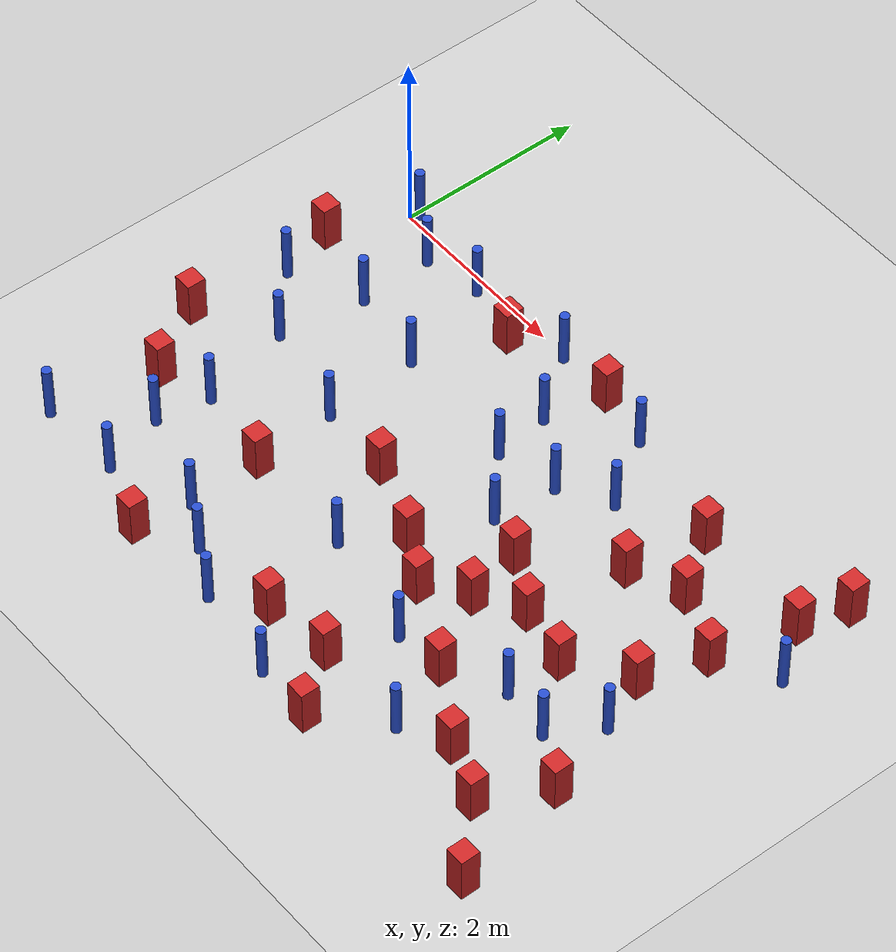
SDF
<sdf version="1.6">
 <world name="default">
  <model name="ground_plane">
   <static>1</static>
   <link name="link">
    <collision name="collision">
     <geometry><plane><normal>0 0 1</normal><size>100 100</size></plane></geometry>
     <surface><friction><ode><mu>100</mu><mu2>50</mu2></ode></friction></surface>
    </collision>
    <visual name="visual">
     <cast_shadows>0</cast_shadows>
     <geometry><plane><normal>0 0 1</normal><size>100 100</size></plane></geometry>
     <material>
      <ambient>1.0 1.0 1.0 1.0</ambient>
      <diffuse>0.8 0.8 0.8 1.0</diffuse>
      <specular>0.01 0.01 0.01 1.000000</specular>
     </material>
    </visual>
   </link>
  </model>
  <model name="NamedLocations">
   <static>true</static>
   <link name="DefaultStart"><pose>8.5 0 0 0 0 3.14</pose></link>
  </model>
  <model name="square_post_obstacle0">
   <static>true</static>
   <pose>3.18175804663 -2.55191059058 1.91545236811e-07 -7.35059704564e-06 1.12565212e-07 2.39332434364e-05</pose>
   <link name="link">
    <pose>0 0 0.25 0 -0 0</pose>
    <inertial>
     <mass>100</mass>
     <inertia>
      <ixx>0.166667</ixx>
      <ixy>0</ixy>
      <ixz>0</ixz>
      <iyy>0.166667</iyy>
      <iyz>0</iyz>
      <izz>0.166667</izz>
     </inertia>
    </inertial>
    <collision name="collision"><geometry><box><size>.2 .2 .5</size></box></geometry></collision>
    <visual name="visual">
     <geometry><box><size>.2 .2 .5</size></box></geometry>
     <material>
      <script><name>Gazebo/Red</name><uri>file://media/materials/scripts/gazebo.material</uri></script>
     </material>
    </visual>
   </link>
  </model>
  <model name="square_post_obstacle4">
   <static>true</static>
   <pose>3.96495598854 -1.96307099355 1.91545236811e-07 -7.35059704564e-06 1.12565212e-07 2.39332434364e-05</pose>
   <link name="link">
    <pose>0 0 0.25 0 -0 0</pose>
    <inertial>
     <mass>100</mass>
     <inertia>
      <ixx>0.166667</ixx>
      <ixy>0</ixy>
      <ixz>0</ixz>
      <iyy>0.166667</iyy>
      <iyz>0</iyz>
      <izz>0.166667</izz>
     </inertia>
    </inertial>
    <collision name="collision"><geometry><box><size>.2 .2 .5</size></box></geometry></collision>
    <visual name="visual">
     <geometry><box><size>.2 .2 .5</size></box></geometry>
     <material>
      <script><name>Gazebo/Red</name><uri>file://media/materials/scripts/gazebo.material</uri></script>
     </material>
    </visual>
   </link>
  </model>
  <model name="square_post_obstacle6">
   <static>true</static>
   <pose>5.1393558744 -2.42444670013 1.91545236811e-07 -7.35059704564e-06 1.12565212e-07 2.39332434364e-05</pose>
   <link name="link">
    <pose>0 0 0.25 0 -0 0</pose>
    <inertial>
     <mass>100</mass>
     <inertia>
      <ixx>0.166667</ixx>
      <ixy>0</ixy>
      <ixz>0</ixz>
      <iyy>0.166667</iyy>
      <iyz>0</iyz>
      <izz>0.166667</izz>
     </inertia>
    </inertial>
    <collision name="collision"><geometry><box><size>.2 .2 .5</size></box></geometry></collision>
    <visual name="visual">
     <geometry><box><size>.2 .2 .5</size></box></geometry>
     <material>
      <script><name>Gazebo/Red</name><uri>file://media/materials/scripts/gazebo.material</uri></script>
     </material>
    </visual>
   </link>
  </model>
  <model name="pole_obstacle7">
   <static>true</static>
   <pose>1.61050316062 -3.80442703881 7.38925637345e-09 -8.47170692799e-08 1.24976765053e-08 -1.74513093017e-07</pose>
   <link name="link">
    <pose>0 0 0.3 0 -0 0</pose>
    <inertial>
     <mass>1</mass>
     <inertia><ixx>0.145833</ixx><ixy>0</ixy><ixz>0</ixz><iyy>0.145833</iyy><iyz>0</iyz><izz>0.125</izz></inertia>
    </inertial>
    <collision name="collision">
     <geometry><cylinder><radius>0.05</radius><length>.6</length></cylinder></geometry>
    </collision>
    <visual name="visual">
     <geometry><cylinder><radius>0.05</radius><length>.6</length></cylinder></geometry>
     <material>
      <script><name>Gazebo/Blue</name><uri>file://media/materials/scripts/gazebo.material</uri></script>
     </material>
    </visual>
   </link>
  </model>
  <model name="square_post_obstacle9">
   <static>true</static>
   <pose>5.92759945526 -1.3757462042 1.91545236811e-07 -7.35059704564e-06 1.12565212e-07 2.39332434364e-05</pose>
   <link name="link">
    <pose>0 0 0.25 0 -0 0</pose>
    <inertial>
     <mass>100</mass>
     <inertia>
      <ixx>0.166667</ixx>
      <ixy>0</ixy>
      <ixz>0</ixz>
      <iyy>0.166667</iyy>
      <iyz>0</iyz>
      <izz>0.166667</izz>
     </inertia>
    </inertial>
    <collision name="collision"><geometry><box><size>.2 .2 .5</size></box></geometry></collision>
    <visual name="visual">
     <geometry><box><size>.2 .2 .5</size></box></geometry>
     <material>
      <script><name>Gazebo/Red</name><uri>file://media/materials/scripts/gazebo.material</uri></script>
     </material>
    </visual>
   </link>
  </model>
  <model name="square_post_obstacle16">
   <static>true</static>
   <pose>4.19334653572 -4.50781424525 1.91545236811e-07 -7.35059704564e-06 1.12565212e-07 2.39332434364e-05</pose>
   <link name="link">
    <pose>0 0 0.25 0 -0 0</pose>
    <inertial>
     <mass>100</mass>
     <inertia>
      <ixx>0.166667</ixx>
      <ixy>0</ixy>
      <ixz>0</ixz>
      <iyy>0.166667</iyy>
      <iyz>0</iyz>
      <izz>0.166667</izz>
     </inertia>
    </inertial>
    <collision name="collision"><geometry><box><size>.2 .2 .5</size></box></geometry></collision>
    <visual name="visual">
     <geometry><box><size>.2 .2 .5</size></box></geometry>
     <material>
      <script><name>Gazebo/Red</name><uri>file://media/materials/scripts/gazebo.material</uri></script>
     </material>
    </visual>
   </link>
  </model>
  <model name="pole_obstacle14">
   <static>true</static>
   <pose>4.01800889094 -0.832098684492 7.38925637345e-09 -8.471706928e-08 1.24976765147e-08 -1.74513093015e-07</pose>
   <link name="link">
    <pose>0 0 0.3 0 -0 0</pose>
    <inertial>
     <mass>1</mass>
     <inertia><ixx>0.145833</ixx><ixy>0</ixy><ixz>0</ixz><iyy>0.145833</iyy><iyz>0</iyz><izz>0.125</izz></inertia>
    </inertial>
    <collision name="collision">
     <geometry><cylinder><radius>0.05</radius><length>.6</length></cylinder></geometry>
    </collision>
    <visual name="visual">
     <geometry><cylinder><radius>0.05</radius><length>.6</length></cylinder></geometry>
     <material>
      <script><name>Gazebo/Blue</name><uri>file://media/materials/scripts/gazebo.material</uri></script>
     </material>
    </visual>
   </link>
  </model>
  <model name="square_post_obstacle24">
   <static>true</static>
   <pose>1.85379968884 -0.30714154001 1.91545236811e-07 -7.35059704564e-06 1.12565212e-07 2.39332434364e-05</pose>
   <link name="link">
    <pose>0 0 0.25 0 -0 0</pose>
    <inertial>
     <mass>100</mass>
     <inertia>
      <ixx>0.166667</ixx>
      <ixy>0</ixy>
      <ixz>0</ixz>
      <iyy>0.166667</iyy>
      <iyz>0</iyz>
      <izz>0.166667</izz>
     </inertia>
    </inertial>
    <collision name="collision"><geometry><box><size>.2 .2 .5</size></box></geometry></collision>
    <visual name="visual">
     <geometry><box><size>.2 .2 .5</size></box></geometry>
     <material>
      <script><name>Gazebo/Red</name><uri>file://media/materials/scripts/gazebo.material</uri></script>
     </material>
    </visual>
   </link>
  </model>
  <model name="pole_obstacle24">
   <static>true</static>
   <pose>0.455199240509 -1.91940216513 7.38925637345e-09 -8.47170692798e-08 1.24976765018e-08 -1.7451309302e-07</pose>
   <link name="link">
    <pose>0 0 0.3 0 -0 0</pose>
    <inertial>
     <mass>1</mass>
     <inertia><ixx>0.145833</ixx><ixy>0</ixy><ixz>0</ixz><iyy>0.145833</iyy><iyz>0</iyz><izz>0.125</izz></inertia>
    </inertial>
    <collision name="collision">
     <geometry><cylinder><radius>0.05</radius><length>.6</length></cylinder></geometry>
    </collision>
    <visual name="visual">
     <geometry><cylinder><radius>0.05</radius><length>.6</length></cylinder></geometry>
     <material>
      <script><name>Gazebo/Blue</name><uri>file://media/materials/scripts/gazebo.material</uri></script>
     </material>
    </visual>
   </link>
  </model>
  <model name="square_post_obstacle35">
   <static>true</static>
   <pose>-0.278103580083 -0.794941268956 1.91545236811e-07 -7.35059704564e-06 1.12565212e-07 2.39332434364e-05</pose>
   <link name="link">
    <pose>0 0 0.25 0 -0 0</pose>
    <inertial>
     <mass>100</mass>
     <inertia>
      <ixx>0.166667</ixx>
      <ixy>0</ixy>
      <ixz>0</ixz>
      <iyy>0.166667</iyy>
      <iyz>0</iyz>
      <izz>0.166667</izz>
     </inertia>
    </inertial>
    <collision name="collision"><geometry><box><size>.2 .2 .5</size></box></geometry></collision>
    <visual name="visual">
     <geometry><box><size>.2 .2 .5</size></box></geometry>
     <material>
      <script><name>Gazebo/Red</name><uri>file://media/materials/scripts/gazebo.material</uri></script>
     </material>
    </visual>
   </link>
  </model>
  <model name="square_post_obstacle44">
   <static>true</static>
   <pose>1.62169686329 -3.05611624351 1.91545236811e-07 -7.35059704564e-06 1.12565212e-07 2.39332434364e-05</pose>
   <link name="link">
    <pose>0 0 0.25 0 -0 0</pose>
    <inertial>
     <mass>100</mass>
     <inertia>
      <ixx>0.166667</ixx>
      <ixy>0</ixy>
      <ixz>0</ixz>
      <iyy>0.166667</iyy>
      <iyz>0</iyz>
      <izz>0.166667</izz>
     </inertia>
    </inertial>
    <collision name="collision"><geometry><box><size>.2 .2 .5</size></box></geometry></collision>
    <visual name="visual">
     <geometry><box><size>.2 .2 .5</size></box></geometry>
     <material>
      <script><name>Gazebo/Red</name><uri>file://media/materials/scripts/gazebo.material</uri></script>
     </material>
    </visual>
   </link>
  </model>
  <model name="square_post_obstacle58">
   <static>true</static>
   <pose>2.38502676294 -2.2313509445 1.91545236811e-07 -7.35059704564e-06 1.12565212e-07 2.39332434364e-05</pose>
   <link name="link">
    <pose>0 0 0.25 0 -0 0</pose>
    <inertial>
     <mass>100</mass>
     <inertia>
      <ixx>0.166667</ixx>
      <ixy>0</ixy>
      <ixz>0</ixz>
      <iyy>0.166667</iyy>
      <iyz>0</iyz>
      <izz>0.166667</izz>
     </inertia>
    </inertial>
    <collision name="collision"><geometry><box><size>.2 .2 .5</size></box></geometry></collision>
    <visual name="visual">
     <geometry><box><size>.2 .2 .5</size></box></geometry>
     <material>
      <script><name>Gazebo/Red</name><uri>file://media/materials/scripts/gazebo.material</uri></script>
     </material>
    </visual>
   </link>
  </model>
  <model name="square_post_obstacle60">
   <static>true</static>
   <pose>5.83844544425 -3.97372692176 1.91545236811e-07 -7.35059704564e-06 1.12565212e-07 2.39332434364e-05</pose>
   <link name="link">
    <pose>0 0 0.25 0 -0 0</pose>
    <inertial>
     <mass>100</mass>
     <inertia>
      <ixx>0.166667</ixx>
      <ixy>0</ixy>
      <ixz>0</ixz>
      <iyy>0.166667</iyy>
      <iyz>0</iyz>
      <izz>0.166667</izz>
     </inertia>
    </inertial>
    <collision name="collision"><geometry><box><size>.2 .2 .5</size></box></geometry></collision>
    <visual name="visual">
     <geometry><box><size>.2 .2 .5</size></box></geometry>
     <material>
      <script><name>Gazebo/Red</name><uri>file://media/materials/scripts/gazebo.material</uri></script>
     </material>
    </visual>
   </link>
  </model>
  <model name="pole_obstacle59">
   <static>true</static>
   <pose>0.566880629203 -0.242045254392 7.38925637345e-09 -8.471706928e-08 1.24976765152e-08 -1.74513093011e-07</pose>
   <link name="link">
    <pose>0 0 0.3 0 -0 0</pose>
    <inertial>
     <mass>1</mass>
     <inertia><ixx>0.145833</ixx><ixy>0</ixy><ixz>0</ixz><iyy>0.145833</iyy><iyz>0</iyz><izz>0.125</izz></inertia>
    </inertial>
    <collision name="collision">
     <geometry><cylinder><radius>0.05</radius><length>.6</length></cylinder></geometry>
    </collision>
    <visual name="visual">
     <geometry><cylinder><radius>0.05</radius><length>.6</length></cylinder></geometry>
     <material>
      <script><name>Gazebo/Blue</name><uri>file://media/materials/scripts/gazebo.material</uri></script>
     </material>
    </visual>
   </link>
  </model>
  <model name="square_post_obstacle62">
   <static>true</static>
   <pose>1.53956838818 -4.39551244862 1.91545236811e-07 -7.35059704564e-06 1.12565212e-07 2.39332434364e-05</pose>
   <link name="link">
    <pose>0 0 0.25 0 -0 0</pose>
    <inertial>
     <mass>100</mass>
     <inertia>
      <ixx>0.166667</ixx>
      <ixy>0</ixy>
      <ixz>0</ixz>
      <iyy>0.166667</iyy>
      <iyz>0</iyz>
      <izz>0.166667</izz>
     </inertia>
    </inertial>
    <collision name="collision"><geometry><box><size>.2 .2 .5</size></box></geometry></collision>
    <visual name="visual">
     <geometry><box><size>.2 .2 .5</size></box></geometry>
     <material>
      <script><name>Gazebo/Red</name><uri>file://media/materials/scripts/gazebo.material</uri></script>
     </material>
    </visual>
   </link>
  </model>
  <model name="pole_obstacle61">
   <static>true</static>
   <pose>2.79649610786 -3.05679323678 7.38925637345e-09 -8.47170692798e-08 1.24976764939e-08 -1.74513093025e-07</pose>
   <link name="link">
    <pose>0 0 0.3 0 -0 0</pose>
    <inertial>
     <mass>1</mass>
     <inertia><ixx>0.145833</ixx><ixy>0</ixy><ixz>0</ixz><iyy>0.145833</iyy><iyz>0</iyz><izz>0.125</izz></inertia>
    </inertial>
    <collision name="collision">
     <geometry><cylinder><radius>0.05</radius><length>.6</length></cylinder></geometry>
    </collision>
    <visual name="visual">
     <geometry><cylinder><radius>0.05</radius><length>.6</length></cylinder></geometry>
     <material>
      <script><name>Gazebo/Blue</name><uri>file://media/materials/scripts/gazebo.material</uri></script>
     </material>
    </visual>
   </link>
  </model>
  <model name="pole_obstacle63">
   <static>true</static>
   <pose>3.52695471793 -1.13129604497 7.38925637345e-09 -8.471706928e-08 1.24976765152e-08 -1.74513093012e-07</pose>
   <link name="link">
    <pose>0 0 0.3 0 -0 0</pose>
    <inertial>
     <mass>1</mass>
     <inertia><ixx>0.145833</ixx><ixy>0</ixy><ixz>0</ixz><iyy>0.145833</iyy><iyz>0</iyz><izz>0.125</izz></inertia>
    </inertial>
    <collision name="collision">
     <geometry><cylinder><radius>0.05</radius><length>.6</length></cylinder></geometry>
    </collision>
    <visual name="visual">
     <geometry><cylinder><radius>0.05</radius><length>.6</length></cylinder></geometry>
     <material>
      <script><name>Gazebo/Blue</name><uri>file://media/materials/scripts/gazebo.material</uri></script>
     </material>
    </visual>
   </link>
  </model>
  <model name="square_post_obstacle70">
   <static>true</static>
   <pose>0.160450424334 -3.07414110236 1.91545236811e-07 -7.35059704564e-06 1.12565212e-07 2.39332434364e-05</pose>
   <link name="link">
    <pose>0 0 0.25 0 -0 0</pose>
    <inertial>
     <mass>100</mass>
     <inertia>
      <ixx>0.166667</ixx>
      <ixy>0</ixy>
      <ixz>0</ixz>
      <iyy>0.166667</iyy>
      <iyz>0</iyz>
      <izz>0.166667</izz>
     </inertia>
    </inertial>
    <collision name="collision"><geometry><box><size>.2 .2 .5</size></box></geometry></collision>
    <visual name="visual">
     <geometry><box><size>.2 .2 .5</size></box></geometry>
     <material>
      <script><name>Gazebo/Red</name><uri>file://media/materials/scripts/gazebo.material</uri></script>
     </material>
    </visual>
   </link>
  </model>
  <model name="square_post_obstacle72">
   <static>true</static>
   <pose>5.2646097158 -3.72813704098 1.91545236811e-07 -7.35059704564e-06 1.12565212e-07 2.39332434364e-05</pose>
   <link name="link">
    <pose>0 0 0.25 0 -0 0</pose>
    <inertial>
     <mass>100</mass>
     <inertia>
      <ixx>0.166667</ixx>
      <ixy>0</ixy>
      <ixz>0</ixz>
      <iyy>0.166667</iyy>
      <iyz>0</iyz>
      <izz>0.166667</izz>
     </inertia>
    </inertial>
    <collision name="collision"><geometry><box><size>.2 .2 .5</size></box></geometry></collision>
    <visual name="visual">
     <geometry><box><size>.2 .2 .5</size></box></geometry>
     <material>
      <script><name>Gazebo/Red</name><uri>file://media/materials/scripts/gazebo.material</uri></script>
     </material>
    </visual>
   </link>
  </model>
  <model name="pole_obstacle72">
   <static>true</static>
   <pose>0.689256475005 -2.89650855627 7.38925637345e-09 -8.47170692799e-08 1.2497676509e-08 -1.74513093016e-07</pose>
   <link name="link">
    <pose>0 0 0.3 0 -0 0</pose>
    <inertial>
     <mass>1</mass>
     <inertia><ixx>0.145833</ixx><ixy>0</ixy><ixz>0</ixz><iyy>0.145833</iyy><iyz>0</iyz><izz>0.125</izz></inertia>
    </inertial>
    <collision name="collision">
     <geometry><cylinder><radius>0.05</radius><length>.6</length></cylinder></geometry>
    </collision>
    <visual name="visual">
     <geometry><cylinder><radius>0.05</radius><length>.6</length></cylinder></geometry>
     <material>
      <script><name>Gazebo/Blue</name><uri>file://media/materials/scripts/gazebo.material</uri></script>
     </material>
    </visual>
   </link>
  </model>
  <model name="pole_obstacle89">
   <static>true</static>
   <pose>2.81417819642 -0.671405765107 7.38925637345e-09 -8.471706928e-08 1.24976765177e-08 -1.74513093012e-07</pose>
   <link name="link">
    <pose>0 0 0.3 0 -0 0</pose>
    <inertial>
     <mass>1</mass>
     <inertia><ixx>0.145833</ixx><ixy>0</ixy><ixz>0</ixz><iyy>0.145833</iyy><iyz>0</iyz><izz>0.125</izz></inertia>
    </inertial>
    <collision name="collision">
     <geometry><cylinder><radius>0.05</radius><length>.6</length></cylinder></geometry>
    </collision>
    <visual name="visual">
     <geometry><cylinder><radius>0.05</radius><length>.6</length></cylinder></geometry>
     <material>
      <script><name>Gazebo/Blue</name><uri>file://media/materials/scripts/gazebo.material</uri></script>
     </material>
    </visual>
   </link>
  </model>
  <model name="square_post_obstacle82">
   <static>true</static>
   <pose>4.53783035847 -3.27180360434 1.91545236811e-07 -7.35059704564e-06 1.12565212e-07 2.39332434364e-05</pose>
   <link name="link">
    <pose>0 0 0.25 0 -0 0</pose>
    <inertial>
     <mass>100</mass>
     <inertia>
      <ixx>0.166667</ixx>
      <ixy>0</ixy>
      <ixz>0</ixz>
      <iyy>0.166667</iyy>
      <iyz>0</iyz>
      <izz>0.166667</izz>
     </inertia>
    </inertial>
    <collision name="collision"><geometry><box><size>.2 .2 .5</size></box></geometry></collision>
    <visual name="visual">
     <geometry><box><size>.2 .2 .5</size></box></geometry>
     <material>
      <script><name>Gazebo/Red</name><uri>file://media/materials/scripts/gazebo.material</uri></script>
     </material>
    </visual>
   </link>
  </model>
  <model name="pole_obstacle91">
   <static>true</static>
   <pose>-0.146522835881 -1.36699770282 7.38925637345e-09 -8.47170692799e-08 1.24976765103e-08 -1.74513093015e-07</pose>
   <link name="link">
    <pose>0 0 0.3 0 -0 0</pose>
    <inertial>
     <mass>1</mass>
     <inertia><ixx>0.145833</ixx><ixy>0</ixy><ixz>0</ixz><iyy>0.145833</iyy><iyz>0</iyz><izz>0.125</izz></inertia>
    </inertial>
    <collision name="collision">
     <geometry><cylinder><radius>0.05</radius><length>.6</length></cylinder></geometry>
    </collision>
    <visual name="visual">
     <geometry><cylinder><radius>0.05</radius><length>.6</length></cylinder></geometry>
     <material>
      <script><name>Gazebo/Blue</name><uri>file://media/materials/scripts/gazebo.material</uri></script>
     </material>
    </visual>
   </link>
  </model>
  <model name="pole_obstacle99">
   <static>true</static>
   <pose>0.595385607743 -1.02869052444 7.38925637345e-09 -8.47170692799e-08 1.24976765037e-08 -1.74513093019e-07</pose>
   <link name="link">
    <pose>0 0 0.3 0 -0 0</pose>
    <inertial>
     <mass>1</mass>
     <inertia><ixx>0.145833</ixx><ixy>0</ixy><ixz>0</ixz><iyy>0.145833</iyy><iyz>0</iyz><izz>0.125</izz></inertia>
    </inertial>
    <collision name="collision">
     <geometry><cylinder><radius>0.05</radius><length>.6</length></cylinder></geometry>
    </collision>
    <visual name="visual">
     <geometry><cylinder><radius>0.05</radius><length>.6</length></cylinder></geometry>
     <material>
      <script><name>Gazebo/Blue</name><uri>file://media/materials/scripts/gazebo.material</uri></script>
     </material>
    </visual>
   </link>
  </model>
  <model name="square_post_obstacle101">
   <static>true</static>
   <pose>4.70498893531 -1.28757539141 1.91545236811e-07 -7.35059704564e-06 1.12565212e-07 2.39332434364e-05</pose>
   <link name="link">
    <pose>0 0 0.25 0 -0 0</pose>
    <inertial>
     <mass>100</mass>
     <inertia>
      <ixx>0.166667</ixx>
      <ixy>0</ixy>
      <ixz>0</ixz>
      <iyy>0.166667</iyy>
      <iyz>0</iyz>
      <izz>0.166667</izz>
     </inertia>
    </inertial>
    <collision name="collision"><geometry><box><size>.2 .2 .5</size></box></geometry></collision>
    <visual name="visual">
     <geometry><box><size>.2 .2 .5</size></box></geometry>
     <material>
      <script><name>Gazebo/Red</name><uri>file://media/materials/scripts/gazebo.material</uri></script>
     </material>
    </visual>
   </link>
  </model>
  <model name="pole_obstacle114">
   <static>true</static>
   <pose>1.16882360552 -0.123996948371 7.38925637345e-09 -8.471706928e-08 1.24976765072e-08 -1.74513093017e-07</pose>
   <link name="link">
    <pose>0 0 0.3 0 -0 0</pose>
    <inertial>
     <mass>1</mass>
     <inertia><ixx>0.145833</ixx><ixy>0</ixy><ixz>0</ixz><iyy>0.145833</iyy><iyz>0</iyz><izz>0.125</izz></inertia>
    </inertial>
    <collision name="collision">
     <geometry><cylinder><radius>0.05</radius><length>.6</length></cylinder></geometry>
    </collision>
    <visual name="visual">
     <geometry><cylinder><radius>0.05</radius><length>.6</length></cylinder></geometry>
     <material>
      <script><name>Gazebo/Blue</name><uri>file://media/materials/scripts/gazebo.material</uri></script>
     </material>
    </visual>
   </link>
  </model>
  <model name="pole_obstacle117">
   <static>true</static>
   <pose>6.48565225866 -1.00770102382 7.38925637345e-09 -8.471706928e-08 1.24976765101e-08 -1.74513093015e-07</pose>
   <link name="link">
    <pose>0 0 0.3 0 -0 0</pose>
    <inertial>
     <mass>1</mass>
     <inertia><ixx>0.145833</ixx><ixy>0</ixy><ixz>0</ixz><iyy>0.145833</iyy><iyz>0</iyz><izz>0.125</izz></inertia>
    </inertial>
    <collision name="collision">
     <geometry><cylinder><radius>0.05</radius><length>.6</length></cylinder></geometry>
    </collision>
    <visual name="visual">
     <geometry><cylinder><radius>0.05</radius><length>.6</length></cylinder></geometry>
     <material>
      <script><name>Gazebo/Blue</name><uri>file://media/materials/scripts/gazebo.material</uri></script>
     </material>
    </visual>
   </link>
  </model>
  <model name="square_post_obstacle103">
   <static>true</static>
   <pose>4.85466158403 -0.476865593984 1.91545236811e-07 -7.35059704564e-06 1.12565212e-07 2.39332434364e-05</pose>
   <link name="link">
    <pose>0 0 0.25 0 -0 0</pose>
    <inertial>
     <mass>100</mass>
     <inertia>
      <ixx>0.166667</ixx>
      <ixy>0</ixy>
      <ixz>0</ixz>
      <iyy>0.166667</iyy>
      <iyz>0</iyz>
      <izz>0.166667</izz>
     </inertia>
    </inertial>
    <collision name="collision"><geometry><box><size>.2 .2 .5</size></box></geometry></collision>
    <visual name="visual">
     <geometry><box><size>.2 .2 .5</size></box></geometry>
     <material>
      <script><name>Gazebo/Red</name><uri>file://media/materials/scripts/gazebo.material</uri></script>
     </material>
    </visual>
   </link>
  </model>
  <model name="square_post_obstacle106">
   <static>true</static>
   <pose>3.6842923182 -2.84367863312 1.91545236811e-07 -7.35059704564e-06 1.12565212e-07 2.39332434364e-05</pose>
   <link name="link">
    <pose>0 0 0.25 0 -0 0</pose>
    <inertial>
     <mass>100</mass>
     <inertia>
      <ixx>0.166667</ixx>
      <ixy>0</ixy>
      <ixz>0</ixz>
      <iyy>0.166667</iyy>
      <iyz>0</iyz>
      <izz>0.166667</izz>
     </inertia>
    </inertial>
    <collision name="collision"><geometry><box><size>.2 .2 .5</size></box></geometry></collision>
    <visual name="visual">
     <geometry><box><size>.2 .2 .5</size></box></geometry>
     <material>
      <script><name>Gazebo/Red</name><uri>file://media/materials/scripts/gazebo.material</uri></script>
     </material>
    </visual>
   </link>
  </model>
  <model name="square_post_obstacle107">
   <static>true</static>
   <pose>5.2664778774 -1.06866949174 1.91545236811e-07 -7.35059704564e-06 1.12565212e-07 2.39332434364e-05</pose>
   <link name="link">
    <pose>0 0 0.25 0 -0 0</pose>
    <inertial>
     <mass>100</mass>
     <inertia>
      <ixx>0.166667</ixx>
      <ixy>0</ixy>
      <ixz>0</ixz>
      <iyy>0.166667</iyy>
      <iyz>0</iyz>
      <izz>0.166667</izz>
     </inertia>
    </inertial>
    <collision name="collision"><geometry><box><size>.2 .2 .5</size></box></geometry></collision>
    <visual name="visual">
     <geometry><box><size>.2 .2 .5</size></box></geometry>
     <material>
      <script><name>Gazebo/Red</name><uri>file://media/materials/scripts/gazebo.material</uri></script>
     </material>
    </visual>
   </link>
  </model>
  <model name="pole_obstacle119">
   <static>true</static>
   <pose>3.98733436958 -3.2995795159 7.38925637345e-09 -8.47170692796e-08 1.24976764765e-08 -1.74513093035e-07</pose>
   <link name="link">
    <pose>0 0 0.3 0 -0 0</pose>
    <inertial>
     <mass>1</mass>
     <inertia><ixx>0.145833</ixx><ixy>0</ixy><ixz>0</ixz><iyy>0.145833</iyy><iyz>0</iyz><izz>0.125</izz></inertia>
    </inertial>
    <collision name="collision">
     <geometry><cylinder><radius>0.05</radius><length>.6</length></cylinder></geometry>
    </collision>
    <visual name="visual">
     <geometry><cylinder><radius>0.05</radius><length>.6</length></cylinder></geometry>
     <material>
      <script><name>Gazebo/Blue</name><uri>file://media/materials/scripts/gazebo.material</uri></script>
     </material>
    </visual>
   </link>
  </model>
  <model name="pole_obstacle123">
   <static>true</static>
   <pose>0.785989515943 -4.11727728339 7.38925637345e-09 -8.471706928e-08 1.24976765086e-08 -1.74513093015e-07</pose>
   <link name="link">
    <pose>0 0 0.3 0 -0 0</pose>
    <inertial>
     <mass>1</mass>
     <inertia><ixx>0.145833</ixx><ixy>0</ixy><ixz>0</ixz><iyy>0.145833</iyy><iyz>0</iyz><izz>0.125</izz></inertia>
    </inertial>
    <collision name="collision">
     <geometry><cylinder><radius>0.05</radius><length>.6</length></cylinder></geometry>
    </collision>
    <visual name="visual">
     <geometry><cylinder><radius>0.05</radius><length>.6</length></cylinder></geometry>
     <material>
      <script><name>Gazebo/Blue</name><uri>file://media/materials/scripts/gazebo.material</uri></script>
     </material>
    </visual>
   </link>
  </model>
  <model name="pole_obstacle126">
   <static>true</static>
   <pose>0.0460288769962 0.0847982172017 7.38925637345e-09 -8.47170692798e-08 1.24976764979e-08 -1.74513093021e-07</pose>
   <link name="link">
    <pose>0 0 0.3 0 -0 0</pose>
    <inertial>
     <mass>1</mass>
     <inertia><ixx>0.145833</ixx><ixy>0</ixy><ixz>0</ixz><iyy>0.145833</iyy><iyz>0</iyz><izz>0.125</izz></inertia>
    </inertial>
    <collision name="collision">
     <geometry><cylinder><radius>0.05</radius><length>.6</length></cylinder></geometry>
    </collision>
    <visual name="visual">
     <geometry><cylinder><radius>0.05</radius><length>.6</length></cylinder></geometry>
     <material>
      <script><name>Gazebo/Blue</name><uri>file://media/materials/scripts/gazebo.material</uri></script>
     </material>
    </visual>
   </link>
  </model>
  <model name="pole_obstacle128">
   <static>true</static>
   <pose>1.4889985163 -1.17130070041 7.38925637345e-09 -8.471706928e-08 1.24976765079e-08 -1.74513093017e-07</pose>
   <link name="link">
    <pose>0 0 0.3 0 -0 0</pose>
    <inertial>
     <mass>1</mass>
     <inertia><ixx>0.145833</ixx><ixy>0</ixy><ixz>0</ixz><iyy>0.145833</iyy><iyz>0</iyz><izz>0.125</izz></inertia>
    </inertial>
    <collision name="collision">
     <geometry><cylinder><radius>0.05</radius><length>.6</length></cylinder></geometry>
    </collision>
    <visual name="visual">
     <geometry><cylinder><radius>0.05</radius><length>.6</length></cylinder></geometry>
     <material>
      <script><name>Gazebo/Blue</name><uri>file://media/materials/scripts/gazebo.material</uri></script>
     </material>
    </visual>
   </link>
  </model>
  <model name="square_post_obstacle119">
   <static>true</static>
   <pose>6.29010380563 -0.0320035401711 1.91545236811e-07 -7.35059704564e-06 1.12565212e-07 2.39332434364e-05</pose>
   <link name="link">
    <pose>0 0 0.25 0 -0 0</pose>
    <inertial>
     <mass>100</mass>
     <inertia>
      <ixx>0.166667</ixx>
      <ixy>0</ixy>
      <ixz>0</ixz>
      <iyy>0.166667</iyy>
      <iyz>0</iyz>
      <izz>0.166667</izz>
     </inertia>
    </inertial>
    <collision name="collision"><geometry><box><size>.2 .2 .5</size></box></geometry></collision>
    <visual name="visual">
     <geometry><box><size>.2 .2 .5</size></box></geometry>
     <material>
      <script><name>Gazebo/Red</name><uri>file://media/materials/scripts/gazebo.material</uri></script>
     </material>
    </visual>
   </link>
  </model>
  <model name="square_post_obstacle139">
   <static>true</static>
   <pose>3.76951424494 -3.94462245912 1.91545236811e-07 -7.35059704564e-06 1.12565212e-07 2.39332434364e-05</pose>
   <link name="link">
    <pose>0 0 0.25 0 -0 0</pose>
    <inertial>
     <mass>100</mass>
     <inertia>
      <ixx>0.166667</ixx>
      <ixy>0</ixy>
      <ixz>0</ixz>
      <iyy>0.166667</iyy>
      <iyz>0</iyz>
      <izz>0.166667</izz>
     </inertia>
    </inertial>
    <collision name="collision"><geometry><box><size>.2 .2 .5</size></box></geometry></collision>
    <visual name="visual">
     <geometry><box><size>.2 .2 .5</size></box></geometry>
     <material>
      <script><name>Gazebo/Red</name><uri>file://media/materials/scripts/gazebo.material</uri></script>
     </material>
    </visual>
   </link>
  </model>
  <model name="square_post_obstacle145">
   <static>true</static>
   <pose>5.72470823601 -2.03075257785 1.91545236811e-07 -7.35059704564e-06 1.12565212e-07 2.39332434364e-05</pose>
   <link name="link">
    <pose>0 0 0.25 0 -0 0</pose>
    <inertial>
     <mass>100</mass>
     <inertia>
      <ixx>0.166667</ixx>
      <ixy>0</ixy>
      <ixz>0</ixz>
      <iyy>0.166667</iyy>
      <iyz>0</iyz>
      <izz>0.166667</izz>
     </inertia>
    </inertial>
    <collision name="collision"><geometry><box><size>.2 .2 .5</size></box></geometry></collision>
    <visual name="visual">
     <geometry><box><size>.2 .2 .5</size></box></geometry>
     <material>
      <script><name>Gazebo/Red</name><uri>file://media/materials/scripts/gazebo.material</uri></script>
     </material>
    </visual>
   </link>
  </model>
  <model name="pole_obstacle163">
   <static>true</static>
   <pose>3.54621206623 -4.47460779733 7.38925637345e-09 -8.47170692798e-08 1.24976765033e-08 -1.74513093019e-07</pose>
   <link name="link">
    <pose>0 0 0.3 0 -0 0</pose>
    <inertial>
     <mass>1</mass>
     <inertia><ixx>0.145833</ixx><ixy>0</ixy><ixz>0</ixz><iyy>0.145833</iyy><iyz>0</iyz><izz>0.125</izz></inertia>
    </inertial>
    <collision name="collision">
     <geometry><cylinder><radius>0.05</radius><length>.6</length></cylinder></geometry>
    </collision>
    <visual name="visual">
     <geometry><cylinder><radius>0.05</radius><length>.6</length></cylinder></geometry>
     <material>
      <script><name>Gazebo/Blue</name><uri>file://media/materials/scripts/gazebo.material</uri></script>
     </material>
    </visual>
   </link>
  </model>
  <model name="square_post_obstacle156">
   <static>true</static>
   <pose>4.53934079696 -2.28831584318 1.91545236811e-07 -7.35059704564e-06 1.12565212e-07 2.39332434364e-05</pose>
   <link name="link">
    <pose>0 0 0.25 0 -0 0</pose>
    <inertial>
     <mass>100</mass>
     <inertia>
      <ixx>0.166667</ixx>
      <ixy>0</ixy>
      <ixz>0</ixz>
      <iyy>0.166667</iyy>
      <iyz>0</iyz>
      <izz>0.166667</izz>
     </inertia>
    </inertial>
    <collision name="collision"><geometry><box><size>.2 .2 .5</size></box></geometry></collision>
    <visual name="visual">
     <geometry><box><size>.2 .2 .5</size></box></geometry>
     <material>
      <script><name>Gazebo/Red</name><uri>file://media/materials/scripts/gazebo.material</uri></script>
     </material>
    </visual>
   </link>
  </model>
  <model name="pole_obstacle164">
   <static>true</static>
   <pose>2.33607237019 -0.0346624484886 7.38925637345e-09 -8.47170692801e-08 1.24976765199e-08 -1.74513093011e-07</pose>
   <link name="link">
    <pose>0 0 0.3 0 -0 0</pose>
    <inertial>
     <mass>1</mass>
     <inertia><ixx>0.145833</ixx><ixy>0</ixy><ixz>0</ixz><iyy>0.145833</iyy><iyz>0</iyz><izz>0.125</izz></inertia>
    </inertial>
    <collision name="collision">
     <geometry><cylinder><radius>0.05</radius><length>.6</length></cylinder></geometry>
    </collision>
    <visual name="visual">
     <geometry><cylinder><radius>0.05</radius><length>.6</length></cylinder></geometry>
     <material>
      <script><name>Gazebo/Blue</name><uri>file://media/materials/scripts/gazebo.material</uri></script>
     </material>
    </visual>
   </link>
  </model>
  <model name="pole_obstacle168">
   <static>true</static>
   <pose>2.57123436769 -4.33773888368 7.38925637345e-09 -8.47170692798e-08 1.24976765033e-08 -1.74513093019e-07</pose>
   <link name="link">
    <pose>0 0 0.3 0 -0 0</pose>
    <inertial>
     <mass>1</mass>
     <inertia><ixx>0.145833</ixx><ixy>0</ixy><ixz>0</ixz><iyy>0.145833</iyy><iyz>0</iyz><izz>0.125</izz></inertia>
    </inertial>
    <collision name="collision">
     <geometry><cylinder><radius>0.05</radius><length>.6</length></cylinder></geometry>
    </collision>
    <visual name="visual">
     <geometry><cylinder><radius>0.05</radius><length>.6</length></cylinder></geometry>
     <material>
      <script><name>Gazebo/Blue</name><uri>file://media/materials/scripts/gazebo.material</uri></script>
     </material>
    </visual>
   </link>
  </model>
  <model name="square_post_obstacle164">
   <static>true</static>
   <pose>6.42299022702 -4.54556371478 1.91545236811e-07 -7.35059704564e-06 1.12565212e-07 2.39332434364e-05</pose>
   <link name="link">
    <pose>0 0 0.25 0 -0 0</pose>
    <inertial>
     <mass>100</mass>
     <inertia>
      <ixx>0.166667</ixx>
      <ixy>0</ixy>
      <ixz>0</ixz>
      <iyy>0.166667</iyy>
      <iyz>0</iyz>
      <izz>0.166667</izz>
     </inertia>
    </inertial>
    <collision name="collision"><geometry><box><size>.2 .2 .5</size></box></geometry></collision>
    <visual name="visual">
     <geometry><box><size>.2 .2 .5</size></box></geometry>
     <material>
      <script><name>Gazebo/Red</name><uri>file://media/materials/scripts/gazebo.material</uri></script>
     </material>
    </visual>
   </link>
  </model>
  <model name="pole_obstacle176">
   <static>true</static>
   <pose>2.07165173557 -4.06157012244 7.38925637345e-09 -8.47170692798e-08 1.24976765033e-08 -1.74513093019e-07</pose>
   <link name="link">
    <pose>0 0 0.3 0 -0 0</pose>
    <inertial>
     <mass>1</mass>
     <inertia><ixx>0.145833</ixx><ixy>0</ixy><ixz>0</ixz><iyy>0.145833</iyy><iyz>0</iyz><izz>0.125</izz></inertia>
    </inertial>
    <collision name="collision">
     <geometry><cylinder><radius>0.05</radius><length>.6</length></cylinder></geometry>
    </collision>
    <visual name="visual">
     <geometry><cylinder><radius>0.05</radius><length>.6</length></cylinder></geometry>
     <material>
      <script><name>Gazebo/Blue</name><uri>file://media/materials/scripts/gazebo.material</uri></script>
     </material>
    </visual>
   </link>
  </model>
  <model name="pole_obstacle189">
   <static>true</static>
   <pose>2.88579501618 -1.25986580338 7.38925637345e-09 -8.471706928e-08 1.24976765152e-08 -1.74513093012e-07</pose>
   <link name="link">
    <pose>0 0 0.3 0 -0 0</pose>
    <inertial>
     <mass>1</mass>
     <inertia><ixx>0.145833</ixx><ixy>0</ixy><ixz>0</ixz><iyy>0.145833</iyy><iyz>0</iyz><izz>0.125</izz></inertia>
    </inertial>
    <collision name="collision">
     <geometry><cylinder><radius>0.05</radius><length>.6</length></cylinder></geometry>
    </collision>
    <visual name="visual">
     <geometry><cylinder><radius>0.05</radius><length>.6</length></cylinder></geometry>
     <material>
      <script><name>Gazebo/Blue</name><uri>file://media/materials/scripts/gazebo.material</uri></script>
     </material>
    </visual>
   </link>
  </model>
  <model name="pole_obstacle191">
   <static>true</static>
   <pose>3.57641074411 -0.163260296599 7.38925637345e-09 -8.471706928e-08 1.24976765208e-08 -1.7451309301e-07</pose>
   <link name="link">
    <pose>0 0 0.3 0 -0 0</pose>
    <inertial>
     <mass>1</mass>
     <inertia><ixx>0.145833</ixx><ixy>0</ixy><ixz>0</ixz><iyy>0.145833</iyy><iyz>0</iyz><izz>0.125</izz></inertia>
    </inertial>
    <collision name="collision">
     <geometry><cylinder><radius>0.05</radius><length>.6</length></cylinder></geometry>
    </collision>
    <visual name="visual">
     <geometry><cylinder><radius>0.05</radius><length>.6</length></cylinder></geometry>
     <material>
      <script><name>Gazebo/Blue</name><uri>file://media/materials/scripts/gazebo.material</uri></script>
     </material>
    </visual>
   </link>
  </model>
  <model name="square_post_obstacle187">
   <static>true</static>
   <pose>6.1895979262 -3.33691547504 1.91545236811e-07 -7.35059704564e-06 1.12565212e-07 2.39332434364e-05</pose>
   <link name="link">
    <pose>0 0 0.25 0 -0 0</pose>
    <inertial>
     <mass>100</mass>
     <inertia>
      <ixx>0.166667</ixx>
      <ixy>0</ixy>
      <ixz>0</ixz>
      <iyy>0.166667</iyy>
      <iyz>0</iyz>
      <izz>0.166667</izz>
     </inertia>
    </inertial>
    <collision name="collision"><geometry><box><size>.2 .2 .5</size></box></geometry></collision>
    <visual name="visual">
     <geometry><box><size>.2 .2 .5</size></box></geometry>
     <material>
      <script><name>Gazebo/Red</name><uri>file://media/materials/scripts/gazebo.material</uri></script>
     </material>
    </visual>
   </link>
  </model>
  <model name="square_post_obstacle190">
   <static>true</static>
   <pose>2.99048620578 -0.0646050782544 1.91545236811e-07 -7.35059704564e-06 1.12565212e-07 2.39332434364e-05</pose>
   <link name="link">
    <pose>0 0 0.25 0 -0 0</pose>
    <inertial>
     <mass>100</mass>
     <inertia>
      <ixx>0.166667</ixx>
      <ixy>0</ixy>
      <ixz>0</ixz>
      <iyy>0.166667</iyy>
      <iyz>0</iyz>
      <izz>0.166667</izz>
     </inertia>
    </inertial>
    <collision name="collision"><geometry><box><size>.2 .2 .5</size></box></geometry></collision>
    <visual name="visual">
     <geometry><box><size>.2 .2 .5</size></box></geometry>
     <material>
      <script><name>Gazebo/Red</name><uri>file://media/materials/scripts/gazebo.material</uri></script>
     </material>
    </visual>
   </link>
  </model>
  <model name="square_post_obstacle193">
   <static>true</static>
   <pose>4.09174109966 -2.55116493941 1.91545236811e-07 -7.35059704564e-06 1.12565212e-07 2.39332434364e-05</pose>
   <link name="link">
    <pose>0 0 0.25 0 -0 0</pose>
    <inertial>
     <mass>100</mass>
     <inertia>
      <ixx>0.166667</ixx>
      <ixy>0</ixy>
      <ixz>0</ixz>
      <iyy>0.166667</iyy>
      <iyz>0</iyz>
      <izz>0.166667</izz>
     </inertia>
    </inertial>
    <collision name="collision"><geometry><box><size>.2 .2 .5</size></box></geometry></collision>
    <visual name="visual">
     <geometry><box><size>.2 .2 .5</size></box></geometry>
     <material>
      <script><name>Gazebo/Red</name><uri>file://media/materials/scripts/gazebo.material</uri></script>
     </material>
    </visual>
   </link>
  </model>
  <model name="pole_obstacle200">
   <static>true</static>
   <pose>1.54692983732 -2.17252466708 7.38925637345e-09 -8.47170692799e-08 1.24976765053e-08 -1.74513093017e-07</pose>
   <link name="link">
    <pose>0 0 0.3 0 -0 0</pose>
    <inertial>
     <mass>1</mass>
     <inertia><ixx>0.145833</ixx><ixy>0</ixy><ixz>0</ixz><iyy>0.145833</iyy><iyz>0</iyz><izz>0.125</izz></inertia>
    </inertial>
    <collision name="collision">
     <geometry><cylinder><radius>0.05</radius><length>.6</length></cylinder></geometry>
    </collision>
    <visual name="visual">
     <geometry><cylinder><radius>0.05</radius><length>.6</length></cylinder></geometry>
     <material>
      <script><name>Gazebo/Blue</name><uri>file://media/materials/scripts/gazebo.material</uri></script>
     </material>
    </visual>
   </link>
  </model>
  <model name="square_post_obstacle195">
   <static>true</static>
   <pose>-0.295451717641 -2.38045864385 1.91545236811e-07 -7.35059704564e-06 1.12565212e-07 2.39332434364e-05</pose>
   <link name="link">
    <pose>0 0 0.25 0 -0 0</pose>
    <inertial>
     <mass>100</mass>
     <inertia>
      <ixx>0.166667</ixx>
      <ixy>0</ixy>
      <ixz>0</ixz>
      <iyy>0.166667</iyy>
      <iyz>0</iyz>
      <izz>0.166667</izz>
     </inertia>
    </inertial>
    <collision name="collision"><geometry><box><size>.2 .2 .5</size></box></geometry></collision>
    <visual name="visual">
     <geometry><box><size>.2 .2 .5</size></box></geometry>
     <material>
      <script><name>Gazebo/Red</name><uri>file://media/materials/scripts/gazebo.material</uri></script>
     </material>
    </visual>
   </link>
  </model>
  <model name="pole_obstacle202">
   <static>true</static>
   <pose>5.62121407513 -3.01299901246 7.38925637345e-09 -8.47170692798e-08 1.24976764937e-08 -1.74513093023e-07</pose>
   <link name="link">
    <pose>0 0 0.3 0 -0 0</pose>
    <inertial>
     <mass>1</mass>
     <inertia><ixx>0.145833</ixx><ixy>0</ixy><ixz>0</ixz><iyy>0.145833</iyy><iyz>0</iyz><izz>0.125</izz></inertia>
    </inertial>
    <collision name="collision">
     <geometry><cylinder><radius>0.05</radius><length>.6</length></cylinder></geometry>
    </collision>
    <visual name="visual">
     <geometry><cylinder><radius>0.05</radius><length>.6</length></cylinder></geometry>
     <material>
      <script><name>Gazebo/Blue</name><uri>file://media/materials/scripts/gazebo.material</uri></script>
     </material>
    </visual>
   </link>
  </model>
  <model name="pole_obstacle217">
   <static>true</static>
   <pose>-0.104701620853 -4.14991232114 7.38925637345e-09 -8.47170692799e-08 1.24976765047e-08 -1.74513093018e-07</pose>
   <link name="link">
    <pose>0 0 0.3 0 -0 0</pose>
    <inertial>
     <mass>1</mass>
     <inertia><ixx>0.145833</ixx><ixy>0</ixy><ixz>0</ixz><iyy>0.145833</iyy><iyz>0</iyz><izz>0.125</izz></inertia>
    </inertial>
    <collision name="collision">
     <geometry><cylinder><radius>0.05</radius><length>.6</length></cylinder></geometry>
    </collision>
    <visual name="visual">
     <geometry><cylinder><radius>0.05</radius><length>.6</length></cylinder></geometry>
     <material>
      <script><name>Gazebo/Blue</name><uri>file://media/materials/scripts/gazebo.material</uri></script>
     </material>
    </visual>
   </link>
  </model>
  <model name="pole_obstacle218">
   <static>true</static>
   <pose>3.46406343492 -1.78671347988 7.38925637345e-09 -8.471706928e-08 1.24976765152e-08 -1.74513093012e-07</pose>
   <link name="link">
    <pose>0 0 0.3 0 -0 0</pose>
    <inertial>
     <mass>1</mass>
     <inertia><ixx>0.145833</ixx><ixy>0</ixy><ixz>0</ixz><iyy>0.145833</iyy><iyz>0</iyz><izz>0.125</izz></inertia>
    </inertial>
    <collision name="collision">
     <geometry><cylinder><radius>0.05</radius><length>.6</length></cylinder></geometry>
    </collision>
    <visual name="visual">
     <geometry><cylinder><radius>0.05</radius><length>.6</length></cylinder></geometry>
     <material>
      <script><name>Gazebo/Blue</name><uri>file://media/materials/scripts/gazebo.material</uri></script>
     </material>
    </visual>
   </link>
  </model>
  <model name="pole_obstacle220">
   <static>true</static>
   <pose>5.08638629034 -2.95966998556 7.38925637345e-09 -8.47170692798e-08 1.24976764937e-08 -1.74513093023e-07</pose>
   <link name="link">
    <pose>0 0 0.3 0 -0 0</pose>
    <inertial>
     <mass>1</mass>
     <inertia><ixx>0.145833</ixx><ixy>0</ixy><ixz>0</ixz><iyy>0.145833</iyy><iyz>0</iyz><izz>0.125</izz></inertia>
    </inertial>
    <collision name="collision">
     <geometry><cylinder><radius>0.05</radius><length>.6</length></cylinder></geometry>
    </collision>
    <visual name="visual">
     <geometry><cylinder><radius>0.05</radius><length>.6</length></cylinder></geometry>
     <material>
      <script><name>Gazebo/Blue</name><uri>file://media/materials/scripts/gazebo.material</uri></script>
     </material>
    </visual>
   </link>
  </model>
  <model name="square_post_obstacle203">
   <static>true</static>
   <pose>3.05752319608 -4.02086502629 1.91545236811e-07 -7.35059704564e-06 1.12565212e-07 2.39332434364e-05</pose>
   <link name="link">
    <pose>0 0 0.25 0 -0 0</pose>
    <inertial>
     <mass>100</mass>
     <inertia>
      <ixx>0.166667</ixx>
      <ixy>0</ixy>
      <ixz>0</ixz>
      <iyy>0.166667</iyy>
      <iyz>0</iyz>
      <izz>0.166667</izz>
     </inertia>
    </inertial>
    <collision name="collision"><geometry><box><size>.2 .2 .5</size></box></geometry></collision>
    <visual name="visual">
     <geometry><box><size>.2 .2 .5</size></box></geometry>
     <material>
      <script><name>Gazebo/Red</name><uri>file://media/materials/scripts/gazebo.material</uri></script>
     </material>
    </visual>
   </link>
  </model>
  <model name="square_post_obstacle208">
   <static>true</static>
   <pose>6.14861095703 -0.537435673831 1.91545236811e-07 -7.35059704564e-06 1.12565212e-07 2.39332434364e-05</pose>
   <link name="link">
    <pose>0 0 0.25 0 -0 0</pose>
    <inertial>
     <mass>100</mass>
     <inertia>
      <ixx>0.166667</ixx>
      <ixy>0</ixy>
      <ixz>0</ixz>
      <iyy>0.166667</iyy>
      <iyz>0</iyz>
      <izz>0.166667</izz>
     </inertia>
    </inertial>
    <collision name="collision"><geometry><box><size>.2 .2 .5</size></box></geometry></collision>
    <visual name="visual">
     <geometry><box><size>.2 .2 .5</size></box></geometry>
     <material>
      <script><name>Gazebo/Red</name><uri>file://media/materials/scripts/gazebo.material</uri></script>
     </material>
    </visual>
   </link>
  </model>
  <model name="pole_obstacle224">
   <static>true</static>
   <pose>0.586380009575 -3.45295997922 7.38925637345e-09 -8.47170692799e-08 1.24976765064e-08 -1.74513093017e-07</pose>
   <link name="link">
    <pose>0 0 0.3 0 -0 0</pose>
    <inertial>
     <mass>1</mass>
     <inertia><ixx>0.145833</ixx><ixy>0</ixy><ixz>0</ixz><iyy>0.145833</iyy><iyz>0</iyz><izz>0.125</izz></inertia>
    </inertial>
    <collision name="collision">
     <geometry><cylinder><radius>0.05</radius><length>.6</length></cylinder></geometry>
    </collision>
    <visual name="visual">
     <geometry><cylinder><radius>0.05</radius><length>.6</length></cylinder></geometry>
     <material>
      <script><name>Gazebo/Blue</name><uri>file://media/materials/scripts/gazebo.material</uri></script>
     </material>
    </visual>
   </link>
  </model>
  <model name="pole_obstacle228">
   <static>true</static>
   <pose>5.92342000957 -2.52841997922 7.38925637345e-09 -8.47170692799e-08 1.24976765028e-08 -1.74513093019e-07</pose>
   <link name="link">
    <pose>0 0 0.3 0 -0 0</pose>
    <inertial>
     <mass>1</mass>
     <inertia><ixx>0.145833</ixx><ixy>0</ixy><ixz>0</ixz><iyy>0.145833</iyy><iyz>0</iyz><izz>0.125</izz></inertia>
    </inertial>
    <collision name="collision">
     <geometry><cylinder><radius>0.05</radius><length>.6</length></cylinder></geometry>
    </collision>
    <visual name="visual">
     <geometry><cylinder><radius>0.05</radius><length>.6</length></cylinder></geometry>
     <material>
      <script><name>Gazebo/Blue</name><uri>file://media/materials/scripts/gazebo.material</uri></script>
     </material>
    </visual>
   </link>
  </model>
  <model name="pole_obstacle239">
   <static>true</static>
   <pose>4.76625000957 -3.94949997922 7.38925637345e-09 -8.47170692799e-08 1.24976765028e-08 -1.74513093019e-07</pose>
   <link name="link">
    <pose>0 0 0.3 0 -0 0</pose>
    <inertial>
     <mass>1</mass>
     <inertia><ixx>0.145833</ixx><ixy>0</ixy><ixz>0</ixz><iyy>0.145833</iyy><iyz>0</iyz><izz>0.125</izz></inertia>
    </inertial>
    <collision name="collision">
     <geometry><cylinder><radius>0.05</radius><length>.6</length></cylinder></geometry>
    </collision>
    <visual name="visual">
     <geometry><cylinder><radius>0.05</radius><length>.6</length></cylinder></geometry>
     <material>
      <script><name>Gazebo/Blue</name><uri>file://media/materials/scripts/gazebo.material</uri></script>
     </material>
    </visual>
   </link>
  </model>
 </world>
</sdf>
